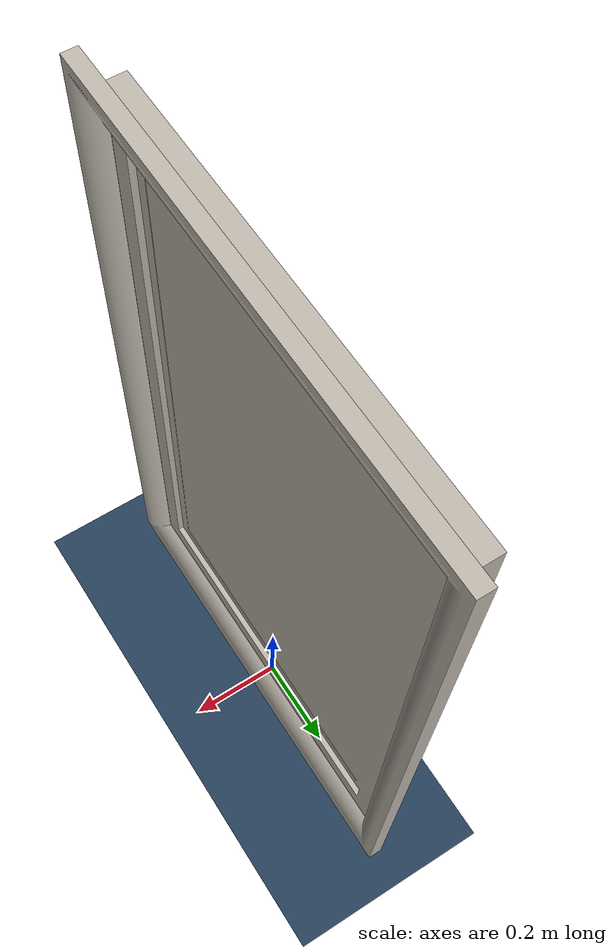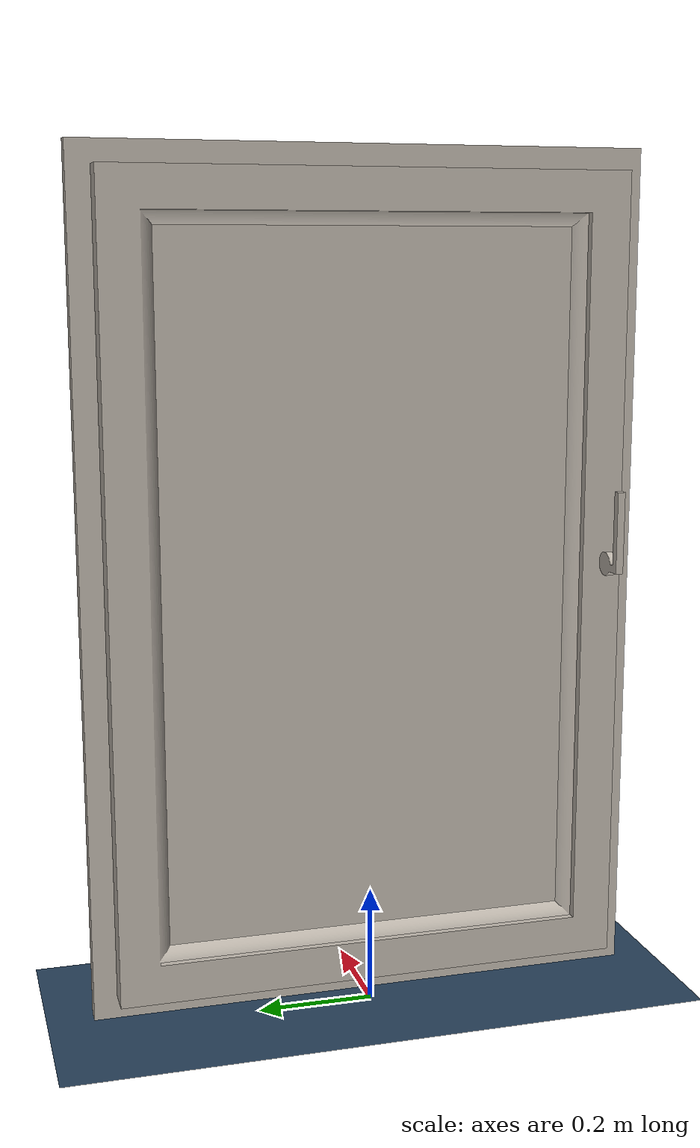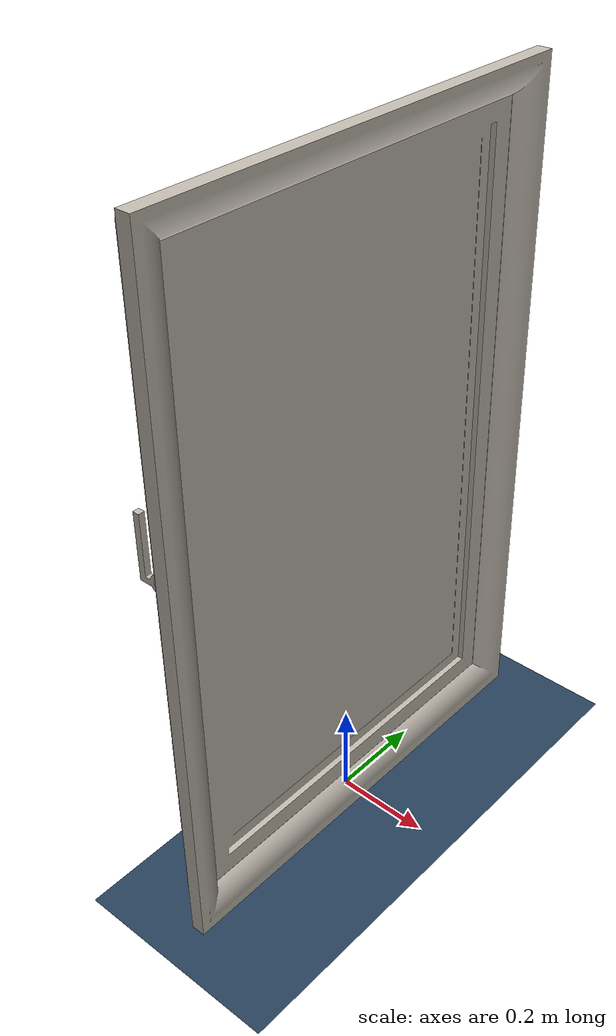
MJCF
w<mujoco model="fridge">
  <compiler angle="radian" meshdir="texture_stl/"/>

  <visual>
    <headlight diffuse="0.6 0.6 0.6" ambient="0.3 0.3 0.3" specular="0 0 0"/>
    <rgba haze="0.15 0.25 0.35 1"/>
    <global azimuth="-20" elevation="-20" ellipsoidinertia="true"/>
  </visual>

  <asset>
    <texture type="skybox" builtin="gradient" rgb1="0.3 0.5 0.7" rgb2="0 0 0" width="512" height="3072"/>
    <texture type="2d" name="groundplane" builtin="checker" mark="edge" rgb1="0.2 0.3 0.4" rgb2="0.1 0.2 0.3"
      markrgb="0.8 0.8 0.8" width="300" height="300"/>
    <texture name="door_texture" type="cube" file="texture_stl/texture_0.png"/>
    <texture name="handle_texture" type="2d" file="texture_stl/texture_1.png"/>
    <material name="door_material" texture="door_texture"/>
    <material name="handle_material" texture="handle_texture"/>
    <material name="groundplane" texture="groundplane" texuniform="true" texrepeat="5 5" reflectance="0.2"/>

    <mesh name="frame" file="frame.stl" scale="1 1 1"/>
    <mesh name="board" file="board.stl" scale="1 1 1"/>
    <mesh name="9969501" file="9969501.stl" scale="1.2975733826295381 1.2975733826295381 1.2975733826295381"/>
  </asset>

  <worldbody>
    <light pos="0 0 1.5" dir="0 0 -1" directional="true"/>
    <geom name="floor" size="0 0 0.05" type="plane" material="groundplane"/>
    <body name="door" euler="0 1.57 0" pos="0 0 0.74">
<!--      had to remove free joint or else the window falls over-->
      <geom name="frame" pos="0 0 0" quat="0.5 0.5 -0.5 -0.5" type="mesh" mesh="frame" material="door_material" conaffinity="0" contype="0"/>
      <body name="link_1" pos="0 0.4434260129928589 0" quat="0.5 0.5 -0.5 -0.5">
        <inertial pos="0 0 0" mass="10.0" diaginertia="5.0 5.0 5.0"/>
        <joint name="joint_1" pos="0 0 0" axis="0 0 -1" range="0 1.50796"/>
        <geom name="board" pos="0.4434260129928589 0 0" quat="1 0 0 0" type="mesh" mesh="board" material="door_material"/>
        <body name="link_2" pos="0.8558267916117128 -0.01 0.024626339215227944">
          <joint name="joint_2" pos="0 0 0" axis="0 1 0" range="-1.50796 1.50796" stiffness="2.0" damping="0.1"/>
          <geom name="handle" type="mesh" mesh="9969501" material="handle_material"/>
        </body>
      </body>
    </body>
  </worldbody>
</mujoco>
